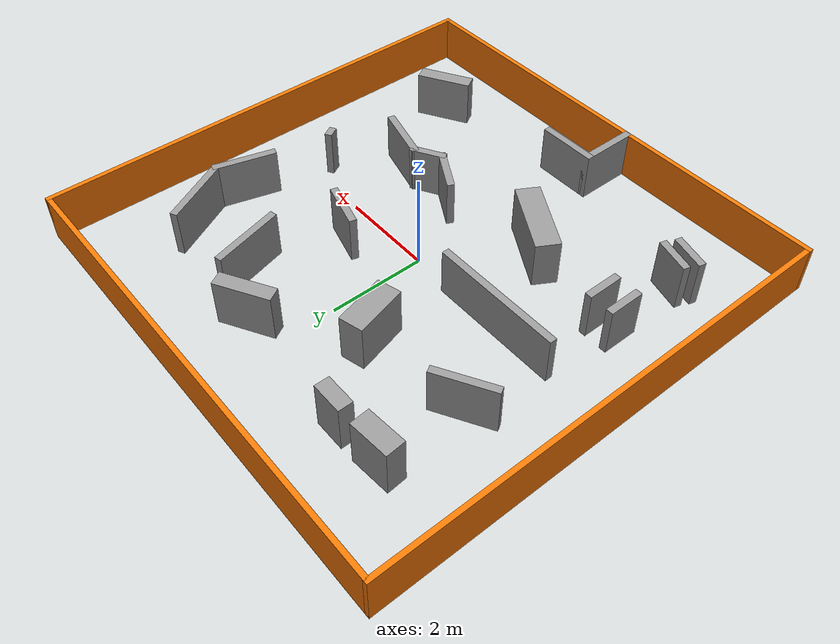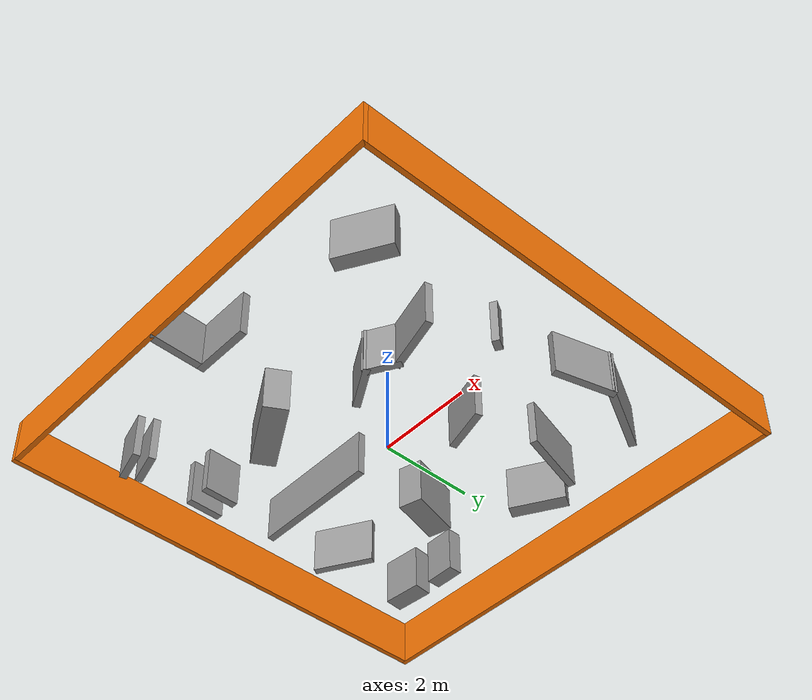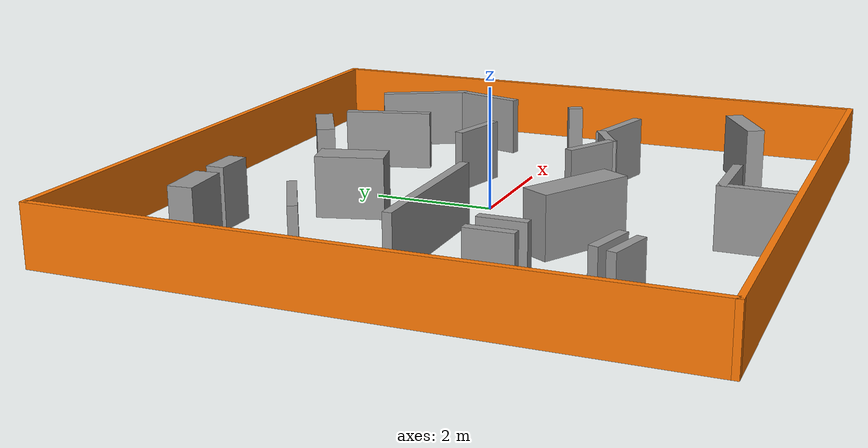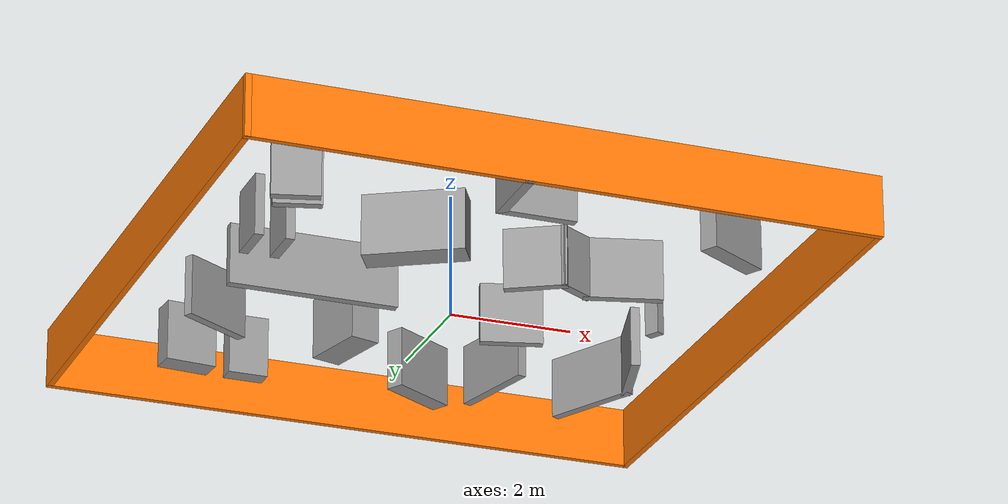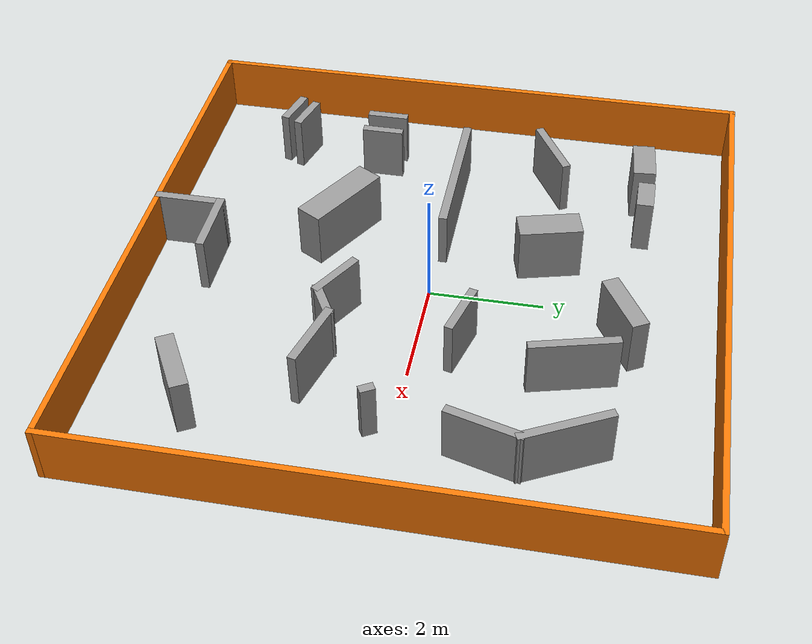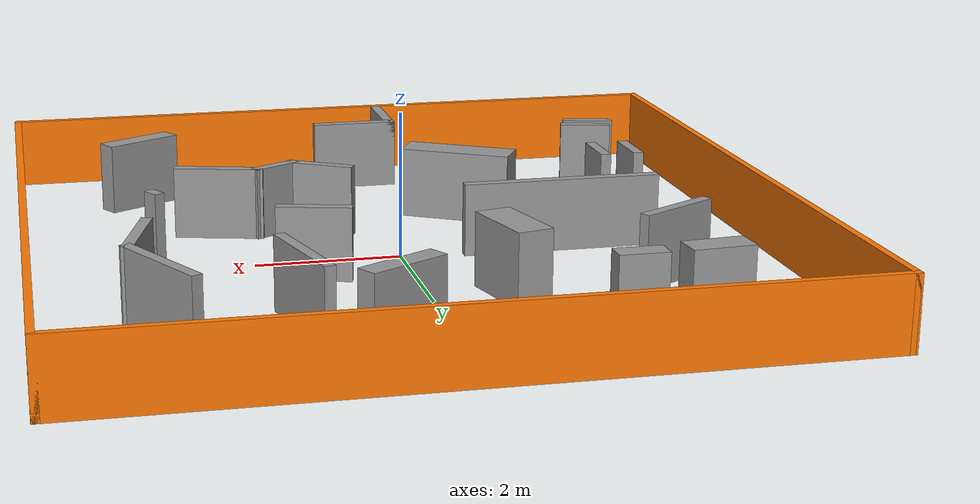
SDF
<?xml version='1.0'?>
<sdf version='1.6'>
  <model name='world2'>
    <pose frame=''>0 0 0 0 -0 0</pose>
    <link name='Wall_0'>
      <collision name='Wall_0_Collision'>
        <geometry>
          <box>
            <size>10.1 0.1 1</size>
          </box>
        </geometry>
        <pose frame=''>0 0 0.5 0 -0 0</pose>
      </collision>
      <visual name='Wall_0_Visual'>
        <pose frame=''>0 0 0.5 0 -0 0</pose>
        <geometry>
          <box>
            <size>10.1 0.1 1</size>
          </box>
        </geometry>
        <material>
          <script>
            <uri>file://media/materials/scripts/gazebo.material</uri>
            <name>Gazebo/Grey</name>
          </script>
          <ambient>0.996078 0.47451 0.0196078 1</ambient>
        </material>
        <meta>
          <layer>0</layer>
        </meta>
      </visual>
      <pose frame=''>0 5 0 0 -0 0</pose>
    </link>
    <link name='Wall_1'>
      <collision name='Wall_1_Collision'>
        <geometry>
          <box>
            <size>10.1 0.1 1</size>
          </box>
        </geometry>
        <pose frame=''>0 0 0.5 0 -0 0</pose>
      </collision>
      <visual name='Wall_1_Visual'>
        <pose frame=''>0 0 0.5 0 -0 0</pose>
        <geometry>
          <box>
            <size>10.1 0.1 1</size>
          </box>
        </geometry>
        <material>
          <script>
            <uri>file://media/materials/scripts/gazebo.material</uri>
            <name>Gazebo/Grey</name>
          </script>
          <ambient>0.996078 0.47451 0.0196078 1</ambient>
        </material>
        <meta>
          <layer>0</layer>
        </meta>
      </visual>
      <pose frame=''>5 0 0 0 -0 -1.5708</pose>
    </link>
    <link name='Wall_10'>
      <collision name='Wall_10_Collision'>
        <geometry>
          <box>
            <size>0.649566 0.3 1</size>
          </box>
        </geometry>
        <pose frame=''>0 0 0.5 0 -0 0</pose>
      </collision>
      <visual name='Wall_10_Visual'>
        <pose frame=''>0 0 0.5 0 -0 0</pose>
        <geometry>
          <box>
            <size>0.649566 0.3 1</size>
          </box>
        </geometry>
        <material>
          <script>
            <uri>file://media/materials/scripts/gazebo.material</uri>
            <name>Gazebo/Grey</name>
          </script>
          <ambient>1 1 1 1</ambient>
        </material>
        <meta>
          <layer>0</layer>
        </meta>
      </visual>
      <pose frame=''>-2.181 3.522 0 0 -0 0</pose>
    </link>
    <link name='Wall_12'>
      <collision name='Wall_12_Collision'>
        <geometry>
          <box>
            <size>1.10035 0.5 1</size>
          </box>
        </geometry>
        <pose frame=''>0 0 0.5 0 -0 0</pose>
      </collision>
      <visual name='Wall_12_Visual'>
        <pose frame=''>0 0 0.5 0 -0 0</pose>
        <geometry>
          <box>
            <size>1.10035 0.5 1</size>
          </box>
        </geometry>
        <material>
          <script>
            <uri>file://media/materials/scripts/gazebo.material</uri>
            <name>Gazebo/Grey</name>
          </script>
          <ambient>1 1 1 1</ambient>
        </material>
        <meta>
          <layer>0</layer>
        </meta>
      </visual>
      <pose frame=''>-1.04725 1.93121 0 0 -0 -1.30966</pose>
    </link>
    <link name='Wall_14'>
      <collision name='Wall_14_Collision'>
        <geometry>
          <box>
            <size>1.25 0.15 1</size>
          </box>
        </geometry>
        <pose frame=''>0 0 0.5 0 -0 0</pose>
      </collision>
      <visual name='Wall_14_Visual'>
        <pose frame=''>0 0 0.5 0 -0 0</pose>
        <geometry>
          <box>
            <size>1.25 0.15 1</size>
          </box>
        </geometry>
        <material>
          <script>
            <uri>file://media/materials/scripts/gazebo.material</uri>
            <name>Gazebo/Grey</name>
          </script>
          <ambient>1 1 1 1</ambient>
        </material>
        <meta>
          <layer>0</layer>
        </meta>
      </visual>
      <pose frame=''>-3.2795 1.738 0 0 -0 -2.61816</pose>
    </link>
    <link name='Wall_16'>
      <collision name='Wall_16_Collision'>
        <geometry>
          <box>
            <size>2.75 0.15 1</size>
          </box>
        </geometry>
        <pose frame=''>0 0 0.5 0 -0 0</pose>
      </collision>
      <visual name='Wall_16_Visual'>
        <pose frame=''>0 0 0.5 0 -0 0</pose>
        <geometry>
          <box>
            <size>2.75 0.15 1</size>
          </box>
        </geometry>
        <material>
          <script>
            <uri>file://media/materials/scripts/gazebo.material</uri>
            <name>Gazebo/Grey</name>
          </script>
          <ambient>1 1 1 1</ambient>
        </material>
        <meta>
          <layer>0</layer>
        </meta>
      </visual>
      <pose frame=''>-2.234 0.086 0 0 -0 0</pose>
    </link>
    <link name='Wall_18'>
      <collision name='Wall_18_Collision'>
        <geometry>
          <box>
            <size>1.15076 0.3 1</size>
          </box>
        </geometry>
        <pose frame=''>0 0 0.5 0 -0 0</pose>
      </collision>
      <visual name='Wall_18_Visual'>
        <pose frame=''>0 0 0.5 0 -0 0</pose>
        <geometry>
          <box>
            <size>1.15076 0.3 1</size>
          </box>
        </geometry>
        <material>
          <script>
            <uri>file://media/materials/scripts/gazebo.material</uri>
            <name>Gazebo/Grey</name>
          </script>
          <ambient>1 1 1 1</ambient>
        </material>
        <meta>
          <layer>0</layer>
        </meta>
      </visual>
      <pose frame=''>0.6875 3.3525 0 0 -0 0.523083</pose>
    </link>
    <link name='Wall_2'>
      <collision name='Wall_2_Collision'>
        <geometry>
          <box>
            <size>10.1 0.1 1</size>
          </box>
        </geometry>
        <pose frame=''>0 0 0.5 0 -0 0</pose>
      </collision>
      <visual name='Wall_2_Visual'>
        <pose frame=''>0 0 0.5 0 -0 0</pose>
        <geometry>
          <box>
            <size>10.1 0.1 1</size>
          </box>
        </geometry>
        <material>
          <script>
            <uri>file://media/materials/scripts/gazebo.material</uri>
            <name>Gazebo/Grey</name>
          </script>
          <ambient>0.996078 0.47451 0.0196078 1</ambient>
        </material>
        <meta>
          <layer>0</layer>
        </meta>
      </visual>
      <pose frame=''>0 -5 0 0 -0 3.14159</pose>
    </link>
    <link name='Wall_20'>
      <collision name='Wall_20_Collision'>
        <geometry>
          <box>
            <size>1.5 0.15 1</size>
          </box>
        </geometry>
        <pose frame=''>0 0 0.5 0 -0 0</pose>
      </collision>
      <visual name='Wall_20_Visual'>
        <pose frame=''>0 0 0.5 0 -0 0</pose>
        <geometry>
          <box>
            <size>1.5 0.15 1</size>
          </box>
        </geometry>
        <material>
          <script>
            <uri>file://media/materials/scripts/gazebo.material</uri>
            <name>Gazebo/Grey</name>
          </script>
          <ambient>1 1 1 1</ambient>
        </material>
        <meta>
          <layer>0</layer>
        </meta>
      </visual>
      <pose frame=''>1.7485 2.641 0 0 -0 -1.30929</pose>
    </link>
    <link name='Wall_22'>
      <collision name='Wall_22_Collision'>
        <geometry>
          <box>
            <size>1 0.15 1</size>
          </box>
        </geometry>
        <pose frame=''>0 0 0.5 0 -0 0</pose>
      </collision>
      <visual name='Wall_22_Visual'>
        <pose frame=''>0 0 0.5 0 -0 0</pose>
        <geometry>
          <box>
            <size>1 0.15 1</size>
          </box>
        </geometry>
        <material>
          <script>
            <uri>file://media/materials/scripts/gazebo.material</uri>
            <name>Gazebo/Grey</name>
          </script>
          <ambient>1 1 1 1</ambient>
        </material>
        <meta>
          <layer>0</layer>
        </meta>
      </visual>
      <pose frame=''>1.3115 0.767 0 0 -0 -0.261815</pose>
    </link>
    <link name='Wall_24'>
      <collision name='Wall_24_Collision'>
        <geometry>
          <box>
            <size>1.58586 0.15 1</size>
          </box>
        </geometry>
        <pose frame=''>0 0 0.5 0 -0 0</pose>
      </collision>
      <visual name='Wall_24_Visual'>
        <pose frame=''>0 0 0.5 0 -0 0</pose>
        <geometry>
          <box>
            <size>1.58586 0.15 1</size>
          </box>
        </geometry>
        <material>
          <script>
            <uri>file://media/materials/scripts/gazebo.material</uri>
            <name>Gazebo/Grey</name>
          </script>
          <ambient>1 1 1 1</ambient>
        </material>
        <meta>
          <layer>0</layer>
        </meta>
      </visual>
      <pose frame=''>3.465 2.687 0 0 -0 -1.09157</pose>
    </link>
    <link name='Wall_25'>
      <collision name='Wall_25_Collision'>
        <geometry>
          <box>
            <size>1.30719 0.15 1</size>
          </box>
        </geometry>
        <pose frame=''>0 0 0.5 0 -0 0</pose>
      </collision>
      <visual name='Wall_25_Visual'>
        <pose frame=''>0 0 0.5 0 -0 0</pose>
        <geometry>
          <box>
            <size>1.30719 0.15 1</size>
          </box>
        </geometry>
        <material>
          <script>
            <uri>file://media/materials/scripts/gazebo.material</uri>
            <name>Gazebo/Grey</name>
          </script>
          <ambient>1 1 1 1</ambient>
        </material>
        <meta>
          <layer>0</layer>
        </meta>
      </visual>
      <pose frame=''>3.643 1.492 0 0 -0 -1.83841</pose>
    </link>
    <link name='Wall_27'>
      <collision name='Wall_27_Collision'>
        <geometry>
          <box>
            <size>0.75 0.15 1</size>
          </box>
        </geometry>
        <pose frame=''>0 0 0.5 0 -0 0</pose>
      </collision>
      <visual name='Wall_27_Visual'>
        <pose frame=''>0 0 0.5 0 -0 0</pose>
        <geometry>
          <box>
            <size>0.75 0.15 1</size>
          </box>
        </geometry>
        <material>
          <script>
            <uri>file://media/materials/scripts/gazebo.material</uri>
            <name>Gazebo/Grey</name>
          </script>
          <ambient>1 1 1 1</ambient>
        </material>
        <meta>
          <layer>0</layer>
        </meta>
      </visual>
      <pose frame=''>-3.749 -1.473 0 0 -0 -1.5708</pose>
    </link>
    <link name='Wall_29'>
      <collision name='Wall_29_Collision'>
        <geometry>
          <box>
            <size>0.75 0.15 1</size>
          </box>
        </geometry>
        <pose frame=''>0 0 0.5 0 -0 0</pose>
      </collision>
      <visual name='Wall_29_Visual'>
        <pose frame=''>0 0 0.5 0 -0 0</pose>
        <geometry>
          <box>
            <size>0.75 0.15 1</size>
          </box>
        </geometry>
        <material>
          <script>
            <uri>file://media/materials/scripts/gazebo.material</uri>
            <name>Gazebo/Grey</name>
          </script>
          <ambient>1 1 1 1</ambient>
        </material>
        <meta>
          <layer>0</layer>
        </meta>
      </visual>
      <pose frame=''>-3.259 -1.473 0 0 -0 -1.5708</pose>
    </link>
    <link name='Wall_3'>
      <collision name='Wall_3_Collision'>
        <geometry>
          <box>
            <size>10.1 0.1 1</size>
          </box>
        </geometry>
        <pose frame=''>0 0 0.5 0 -0 0</pose>
      </collision>
      <visual name='Wall_3_Visual'>
        <pose frame=''>0 0 0.5 0 -0 0</pose>
        <geometry>
          <box>
            <size>10.1 0.1 1</size>
          </box>
        </geometry>
        <material>
          <script>
            <uri>file://media/materials/scripts/gazebo.material</uri>
            <name>Gazebo/Grey</name>
          </script>
          <ambient>0.996078 0.47451 0.0196078 1</ambient>
        </material>
        <meta>
          <layer>0</layer>
        </meta>
      </visual>
      <pose frame=''>-5 0 0 0 -0 1.5708</pose>
    </link>
    <link name='Wall_31'>
      <collision name='Wall_31_Collision'>
        <geometry>
          <box>
            <size>1.59946 0.5 1</size>
          </box>
        </geometry>
        <pose frame=''>0 0 0.5 0 -0 0</pose>
      </collision>
      <visual name='Wall_31_Visual'>
        <pose frame=''>0 0 0.5 0 -0 0</pose>
        <geometry>
          <box>
            <size>1.59946 0.5 1</size>
          </box>
        </geometry>
        <material>
          <script>
            <uri>file://media/materials/scripts/gazebo.material</uri>
            <name>Gazebo/Grey</name>
          </script>
          <ambient>1 1 1 1</ambient>
        </material>
        <meta>
          <layer>0</layer>
        </meta>
      </visual>
      <pose frame=''>-1.25346 -1.84518 0 0 -0 -0.523884</pose>
    </link>
    <link name='Wall_33'>
      <collision name='Wall_33_Collision'>
        <geometry>
          <box>
            <size>1 0.15 1</size>
          </box>
        </geometry>
        <pose frame=''>0 0 0.5 0 -0 0</pose>
      </collision>
      <visual name='Wall_33_Visual'>
        <pose frame=''>0 0 0.5 0 -0 0</pose>
        <geometry>
          <box>
            <size>1 0.15 1</size>
          </box>
        </geometry>
        <material>
          <script>
            <uri>file://media/materials/scripts/gazebo.material</uri>
            <name>Gazebo/Grey</name>
          </script>
          <ambient>1 1 1 1</ambient>
        </material>
        <meta>
          <layer>0</layer>
        </meta>
      </visual>
      <pose frame=''>0.871 -1.4165 0 0 -0 -0.52367</pose>
    </link>
    <link name='Wall_34'>
      <collision name='Wall_34_Collision'>
        <geometry>
          <box>
            <size>0.75 0.15 1</size>
          </box>
        </geometry>
        <pose frame=''>0 0 0.5 0 -0 0</pose>
      </collision>
      <visual name='Wall_34_Visual'>
        <pose frame=''>0 0 0.5 0 -0 0</pose>
        <geometry>
          <box>
            <size>0.75 0.15 1</size>
          </box>
        </geometry>
        <material>
          <script>
            <uri>file://media/materials/scripts/gazebo.material</uri>
            <name>Gazebo/Grey</name>
          </script>
          <ambient>1 1 1 1</ambient>
        </material>
        <meta>
          <layer>0</layer>
        </meta>
      </visual>
      <pose frame=''>1.499 -1.479 0 0 -0 0.523278</pose>
    </link>
    <link name='Wall_35'>
      <collision name='Wall_35_Collision'>
        <geometry>
          <box>
            <size>1.25 0.15 1</size>
          </box>
        </geometry>
        <pose frame=''>0 0 0.5 0 -0 0</pose>
      </collision>
      <visual name='Wall_35_Visual'>
        <pose frame=''>0 0 0.5 0 -0 0</pose>
        <geometry>
          <box>
            <size>1.25 0.15 1</size>
          </box>
        </geometry>
        <material>
          <script>
            <uri>file://media/materials/scripts/gazebo.material</uri>
            <name>Gazebo/Grey</name>
          </script>
          <ambient>1 1 1 1</ambient>
        </material>
        <meta>
          <layer>0</layer>
        </meta>
      </visual>
      <pose frame=''>2.2905 -1.471 0 0 -0 -0.261071</pose>
    </link>
    <link name='Wall_37'>
      <collision name='Wall_37_Collision'>
        <geometry>
          <box>
            <size>0.25 0.15 1</size>
          </box>
        </geometry>
        <pose frame=''>0 0 0.5 0 -0 0</pose>
      </collision>
      <visual name='Wall_37_Visual'>
        <pose frame=''>0 0 0.5 0 -0 0</pose>
        <geometry>
          <box>
            <size>0.25 0.15 1</size>
          </box>
        </geometry>
        <material>
          <script>
            <uri>file://media/materials/scripts/gazebo.material</uri>
            <name>Gazebo/Grey</name>
          </script>
          <ambient>1 1 1 1</ambient>
        </material>
        <meta>
          <layer>0</layer>
        </meta>
      </visual>
      <pose frame=''>3.281 -0.3595 0 0 -0 -1.04918</pose>
    </link>
    <link name='Wall_39'>
      <collision name='Wall_39_Collision'>
        <geometry>
          <box>
            <size>0.75 0.15 1</size>
          </box>
        </geometry>
        <pose frame=''>0 0 0.5 0 -0 0</pose>
      </collision>
      <visual name='Wall_39_Visual'>
        <pose frame=''>0 0 0.5 0 -0 0</pose>
        <geometry>
          <box>
            <size>0.75 0.15 1</size>
          </box>
        </geometry>
        <material>
          <script>
            <uri>file://media/materials/scripts/gazebo.material</uri>
            <name>Gazebo/Grey</name>
          </script>
          <ambient>1 1 1 1</ambient>
        </material>
        <meta>
          <layer>0</layer>
        </meta>
      </visual>
      <pose frame=''>-3.551 -3.025 0 0 -0 -0.262747</pose>
    </link>
    <link name='Wall_41'>
      <collision name='Wall_41_Collision'>
        <geometry>
          <box>
            <size>0.75 0.15 1</size>
          </box>
        </geometry>
        <pose frame=''>0 0 0.5 0 -0 0</pose>
      </collision>
      <visual name='Wall_41_Visual'>
        <pose frame=''>0 0 0.5 0 -0 0</pose>
        <geometry>
          <box>
            <size>0.75 0.15 1</size>
          </box>
        </geometry>
        <material>
          <script>
            <uri>file://media/materials/scripts/gazebo.material</uri>
            <name>Gazebo/Grey</name>
          </script>
          <ambient>1 1 1 1</ambient>
        </material>
        <meta>
          <layer>0</layer>
        </meta>
      </visual>
      <pose frame=''>-3.673 -3.3005 0 0 -0 -0.261139</pose>
    </link>
    <link name='Wall_43'>
      <collision name='Wall_43_Collision'>
        <geometry>
          <box>
            <size>1.25 0.15 1</size>
          </box>
        </geometry>
        <pose frame=''>0 0 0.5 0 -0 0</pose>
      </collision>
      <visual name='Wall_43_Visual'>
        <pose frame=''>0 0 0.5 0 -0 0</pose>
        <geometry>
          <box>
            <size>1.25 0.15 1</size>
          </box>
        </geometry>
        <material>
          <script>
            <uri>file://media/materials/scripts/gazebo.material</uri>
            <name>Gazebo/Grey</name>
          </script>
          <ambient>1 1 1 1</ambient>
        </material>
        <meta>
          <layer>0</layer>
        </meta>
      </visual>
      <pose frame=''>-0.629 -4.416 0 0 -0 1.5708</pose>
    </link>
    <link name='Wall_44'>
      <collision name='Wall_44_Collision'>
        <geometry>
          <box>
            <size>1.25 0.15 1</size>
          </box>
        </geometry>
        <pose frame=''>0 0 0.5 0 -0 0</pose>
      </collision>
      <visual name='Wall_44_Visual'>
        <pose frame=''>0 0 0.5 0 -0 0</pose>
        <geometry>
          <box>
            <size>1.25 0.15 1</size>
          </box>
        </geometry>
        <material>
          <script>
            <uri>file://media/materials/scripts/gazebo.material</uri>
            <name>Gazebo/Grey</name>
          </script>
          <ambient>1 1 1 1</ambient>
        </material>
        <meta>
          <layer>0</layer>
        </meta>
      </visual>
      <pose frame=''>-0.079 -3.866 0 0 -0 0</pose>
    </link>
    <link name='Wall_46'>
      <collision name='Wall_46_Collision'>
        <geometry>
          <box>
            <size>1.15038 0.3 1</size>
          </box>
        </geometry>
        <pose frame=''>0 0 0.5 0 -0 0</pose>
      </collision>
      <visual name='Wall_46_Visual'>
        <pose frame=''>0 0 0.5 0 -0 0</pose>
        <geometry>
          <box>
            <size>1.15038 0.3 1</size>
          </box>
        </geometry>
        <material>
          <script>
            <uri>file://media/materials/scripts/gazebo.material</uri>
            <name>Gazebo/Grey</name>
          </script>
          <ambient>1 1 1 1</ambient>
        </material>
        <meta>
          <layer>0</layer>
        </meta>
      </visual>
      <pose frame=''>3.257 -3.4385 0 0 -0 0.52367</pose>
    </link>
    <link name='Wall_8'>
      <collision name='Wall_8_Collision'>
        <geometry>
          <box>
            <size>0.836406 0.4 1</size>
          </box>
        </geometry>
        <pose frame=''>0 0 0.5 0 -0 0</pose>
      </collision>
      <visual name='Wall_8_Visual'>
        <pose frame=''>0 0 0.5 0 -0 0</pose>
        <geometry>
          <box>
            <size>0.836406 0.4 1</size>
          </box>
        </geometry>
        <material>
          <script>
            <uri>file://media/materials/scripts/gazebo.material</uri>
            <name>Gazebo/Grey</name>
          </script>
          <ambient>1 1 1 1</ambient>
        </material>
        <meta>
          <layer>0</layer>
        </meta>
      </visual>
      <pose frame=''>-3.19471 3.43461 0 0 -0 -3.06131</pose>
    </link>
    <static>1</static>
  </model>
</sdf>
